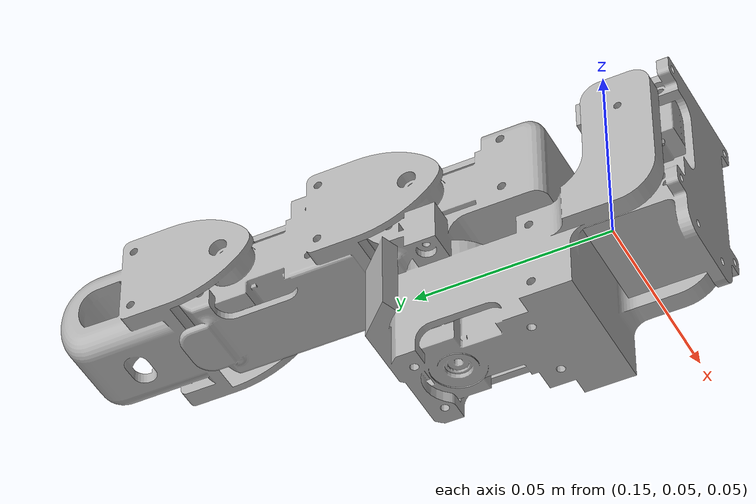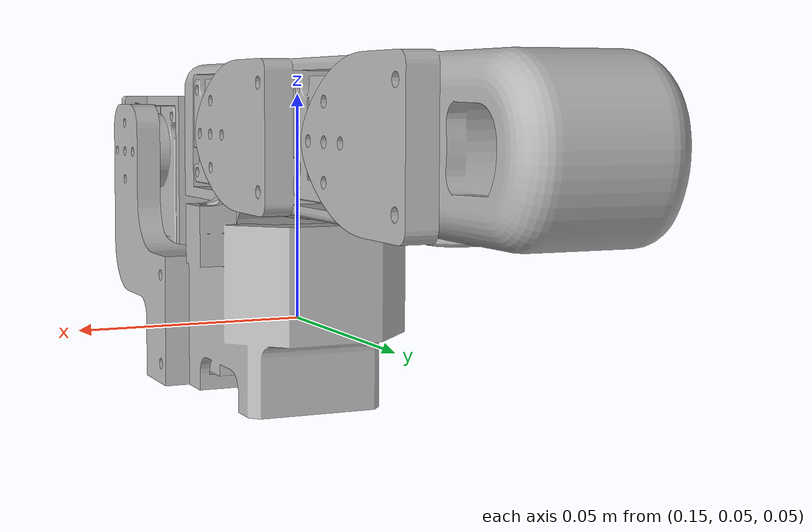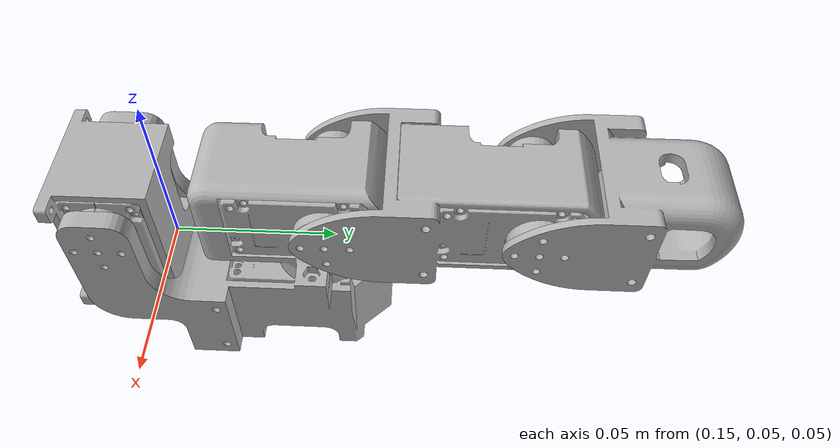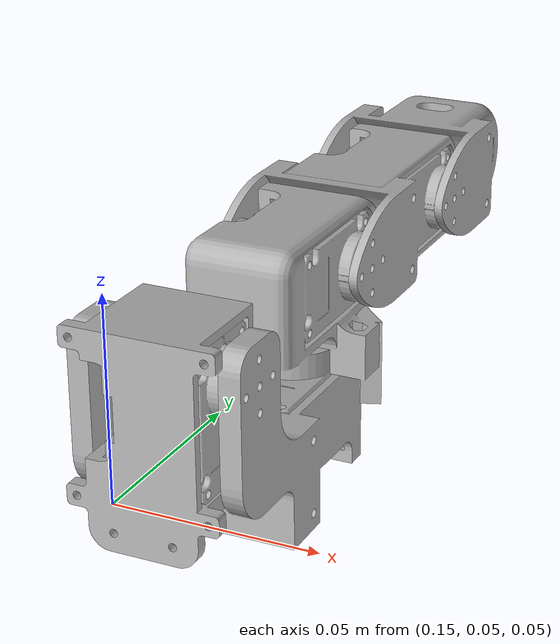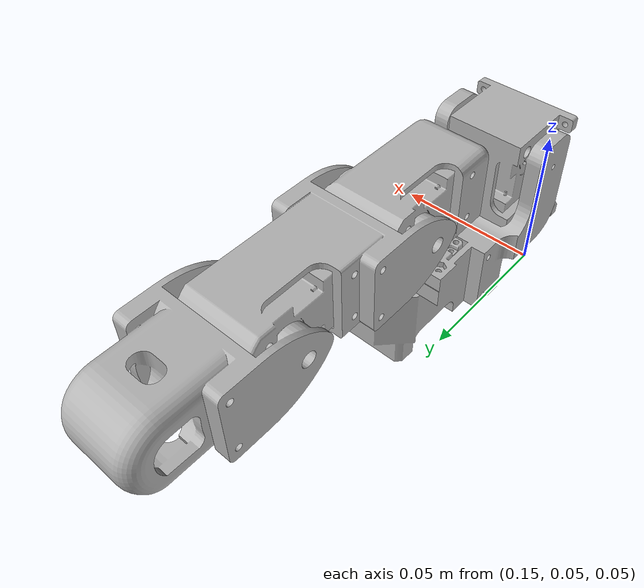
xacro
<?xml version="1.0" ?>
<robot name="finger" xmlns:xacro="http://www.ros.org/wiki/xacro">

<xacro:include filename="$(find finger_description)/urdf/materials.xacro" />
<xacro:include filename="$(find finger_description)/urdf/finger.trans" />
<xacro:include filename="$(find finger_description)/urdf/finger.gazebo" />
<link name="base_link">
  <inertial>
    <origin xyz="0.16887252148389836 0.04577342816138104 0.07823509357532026" rpy="0 0 0"/>
    <mass value="0.18436764983478113"/>
    <inertia ixx="4e-05" iyy="4.1e-05" izz="2e-05" ixy="-0.0" iyz="-1e-06" ixz="-1e-06"/>
  </inertial>
  <visual>
    <origin xyz="0 0 0" rpy="0 0 0"/>
    <geometry>
      <mesh filename="package://finger_description/meshes/base_link.stl" scale="0.001 0.001 0.001"/>
    </geometry>
    <material name="silver"/>
  </visual>
  <collision>
    <origin xyz="0 0 0" rpy="0 0 0"/>
    <geometry>
      <mesh filename="package://finger_description/meshes/base_link.stl" scale="0.001 0.001 0.001"/>
    </geometry>
  </collision>
</link>

<link name="lateral_1">
  <inertial>
    <origin xyz="-0.012881529511754003 0.03954619195738879 -0.015274493618100043" rpy="0 0 0"/>
    <mass value="0.5774156891557832"/>
    <inertia ixx="0.000409" iyy="0.000237" izz="0.00028" ixy="-8e-06" iyz="-2.3e-05" ixz="-4e-06"/>
  </inertial>
  <visual>
    <origin xyz="-0.1835 -0.04622 -0.087809" rpy="0 0 0"/>
    <geometry>
      <mesh filename="package://finger_description/meshes/lateral_1.stl" scale="0.001 0.001 0.001"/>
    </geometry>
    <material name="silver"/>
  </visual>
  <collision>
    <origin xyz="-0.1835 -0.04622 -0.087809" rpy="0 0 0"/>
    <geometry>
      <mesh filename="package://finger_description/meshes/lateral_1.stl" scale="0.001 0.001 0.001"/>
    </geometry>
  </collision>
</link>

<link name="middle_1">
  <inertial>
    <origin xyz="-0.01530422251663821 0.03663619236573172 -0.00011183550752595639" rpy="0 0 0"/>
    <mass value="0.23665678569349335"/>
    <inertia ixx="8.1e-05" iyy="3.3e-05" izz="8.9e-05" ixy="-5e-06" iyz="1e-06" ixz="-0.0"/>
  </inertial>
  <visual>
    <origin xyz="-0.1865 -0.102972 -0.092809" rpy="0 0 0"/>
    <geometry>
      <mesh filename="package://finger_description/meshes/middle_1.stl" scale="0.001 0.001 0.001"/>
    </geometry>
    <material name="silver"/>
  </visual>
  <collision>
    <origin xyz="-0.1865 -0.102972 -0.092809" rpy="0 0 0"/>
    <geometry>
      <mesh filename="package://finger_description/meshes/middle_1.stl" scale="0.001 0.001 0.001"/>
    </geometry>
  </collision>
</link>

<link name="distal_1">
  <inertial>
    <origin xyz="-0.016591342948051008 0.0249615131852991 -9.43911974680689e-05" rpy="0 0 0"/>
    <mass value="0.11952821014405499"/>
    <inertia ixx="2.8e-05" iyy="2.2e-05" izz="3.5e-05" ixy="-2e-06" iyz="0.0" ixz="0.0"/>
  </inertial>
  <visual>
    <origin xyz="-0.1865 -0.154676 -0.092856" rpy="0 0 0"/>
    <geometry>
      <mesh filename="package://finger_description/meshes/distal_1.stl" scale="0.001 0.001 0.001"/>
    </geometry>
    <material name="silver"/>
  </visual>
  <collision>
    <origin xyz="-0.1865 -0.154676 -0.092856" rpy="0 0 0"/>
    <geometry>
      <mesh filename="package://finger_description/meshes/distal_1.stl" scale="0.001 0.001 0.001"/>
    </geometry>
  </collision>
</link>

<joint name="mcp" type="revolute">
  <origin xyz="0.1835 0.04622 0.087809" rpy="0 0 0"/>
  <limit effort="30" velocity="2" lower="0" upper="1.4"/>
  <parent link="base_link"/>
  <child link="lateral_1"/>
  <axis xyz="1.0 0.0 -0.0"/>
</joint>

<joint name="pip" type="revolute">
  <origin xyz="0.003 0.056752 0.005" rpy="0 0 0"/>
  <limit effort="30" velocity="2" lower="0" upper="1.4"/>
  <parent link="lateral_1"/>
  <child link="middle_1"/>
  <axis xyz="1.0 0.0 0.0"/>
</joint>

<joint name="dip" type="revolute">
  <origin xyz="0.0 0.051704 4.7e-05" rpy="0 0 0"/>
  <limit effort="30" velocity="2" lower="0" upper="1.4"/>
  <parent link="middle_1"/>
  <child link="distal_1"/>
  <axis xyz="1.0 0.0 0.0"/>
</joint>

</robot>

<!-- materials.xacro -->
<robot name="finger" xmlns:xacro="http://www.ros.org/wiki/xacro" >

<material name="silver">
  <color rgba="0.700 0.700 0.700 1.000"/>
</material>

</robot>

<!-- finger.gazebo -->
<robot name="finger" xmlns:xacro="http://www.ros.org/wiki/xacro" >

<xacro:property name="body_color" value="Gazebo/Silver" />

<gazebo>
  <plugin name="control" filename="libgazebo_ros_control.so"/>
</gazebo>
<gazebo reference="base_link">
  <material>${body_color}</material>
  <mu1>0.2</mu1>
  <mu2>0.2</mu2>
  <selfCollide>true</selfCollide>
  <gravity>true</gravity>
</gazebo>

<gazebo reference="lateral_1">
  <material>${body_color}</material>
  <mu1>0.2</mu1>
  <mu2>0.2</mu2>
  <selfCollide>true</selfCollide>
</gazebo>

<gazebo reference="middle_1">
  <material>${body_color}</material>
  <mu1>0.2</mu1>
  <mu2>0.2</mu2>
  <selfCollide>true</selfCollide>
</gazebo>

<gazebo reference="distal_1">
  <material>${body_color}</material>
  <mu1>0.2</mu1>
  <mu2>0.2</mu2>
  <selfCollide>true</selfCollide>
</gazebo>

</robot>
